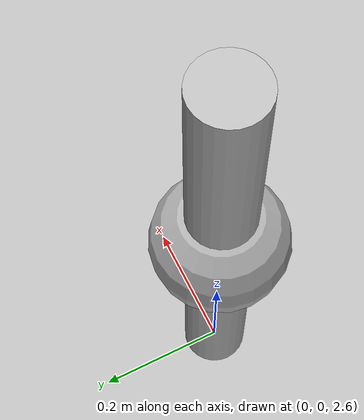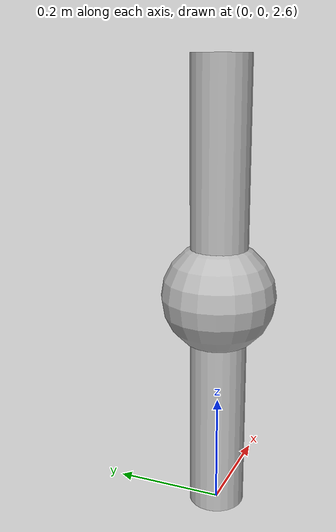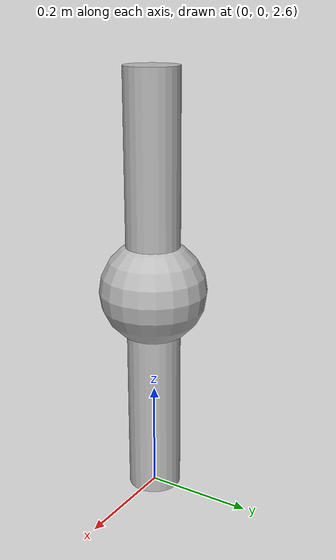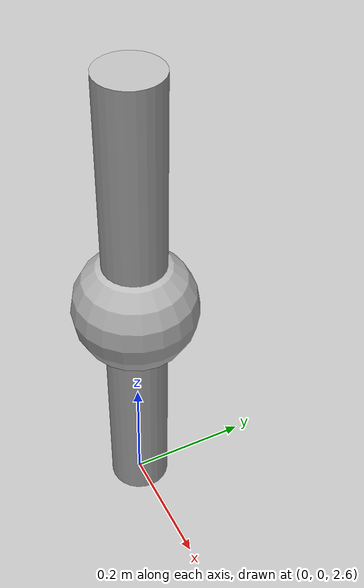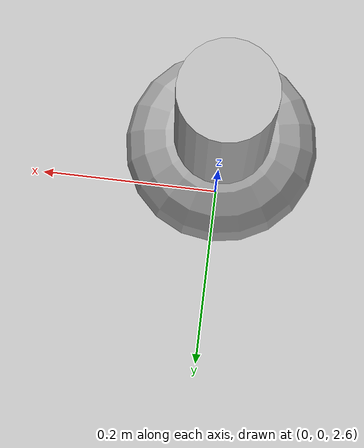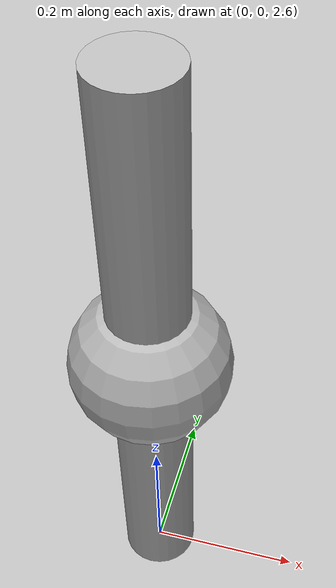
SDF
<?xml version="1.0"?>
<sdf version="1.4">
  <world name="default">

    <!-- Ground Plane -->
    <include>
      <uri>model://ground_plane</uri>
    </include>

    <include>
      <uri>model://sun</uri>
    </include>

    <model name="wasp">
      <pose>0 0 3 0 0 0</pose>
      <link name='link'>
        <visual name="vis">
          <geometry>
            <sphere>
              <radius>0.1</radius>
            </sphere>
          </geometry>
          <plugin name="foamer" filename="libwasp_gazebo.so">
            <particleSize>0.01</particleSize>
            <ejectSpeed>0.2</ejectSpeed>
            <useROS>false</useROS>
          </plugin>
        </visual>
        <visual name='cyl'>
          <geometry>
            <cylinder>
              <radius>0.05</radius>
              <length>0.8</length>
            </cylinder>
          </geometry>
        </visual>
      </link>
      <static>1</static>
    </model>
  </world>
</sdf>
